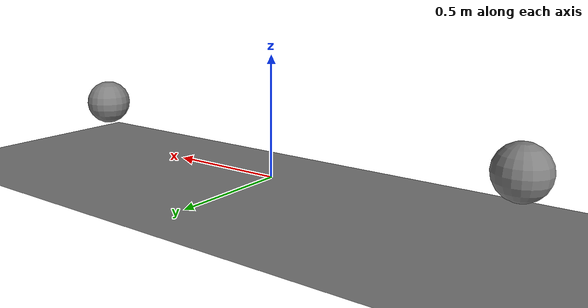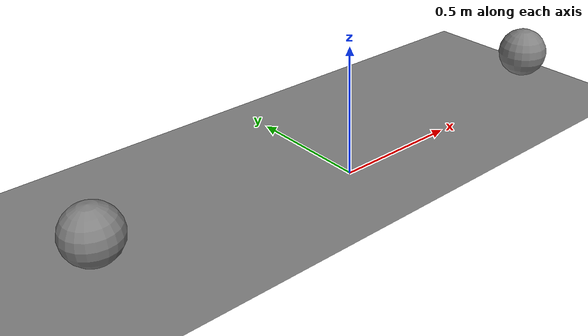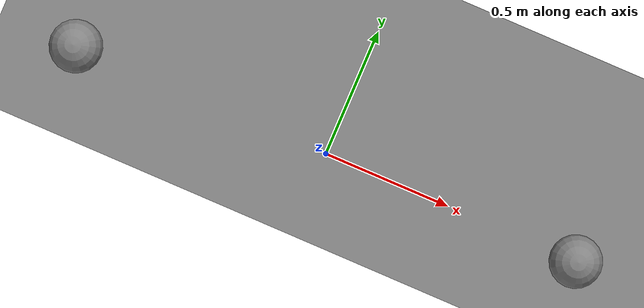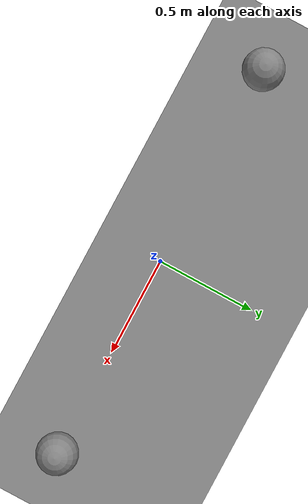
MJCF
<mujoco model="two_trees">
        <option gravity="0 0 -9.81" timestep="0.002" sleep_tolerance="0.1">
            <flag sleep="enable"/>
        </option>
        <worldbody>
            <geom type="plane" size="5 5 0.1" solref="0.005 1.5"/>
            <body name="ball_a" pos="-1 0 0.2">
                <freejoint name="free_a"/>
                <geom type="sphere" size="0.1" mass="1.0" solref="0.005 1.5"/>
            </body>
            <body name="ball_b" pos="1 0 0.2">
                <freejoint name="free_b"/>
                <geom type="sphere" size="0.1" mass="1.0" solref="0.005 1.5"/>
            </body>
        </worldbody>
    </mujoco>
